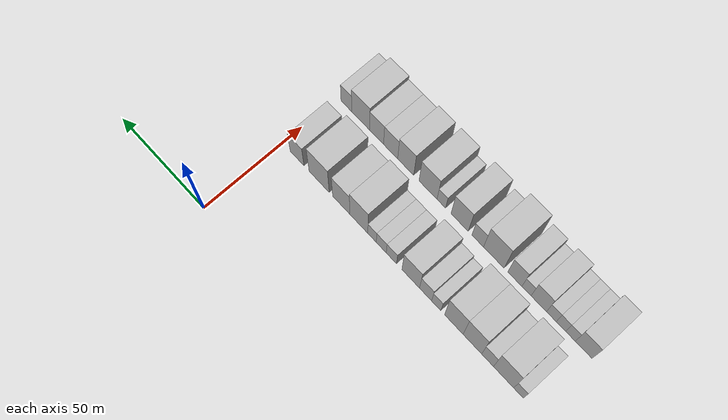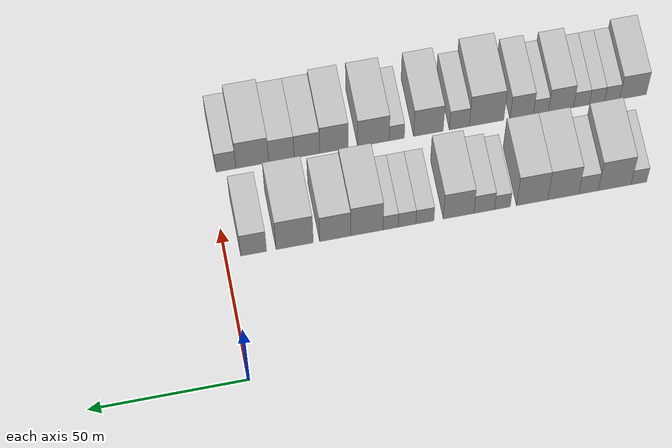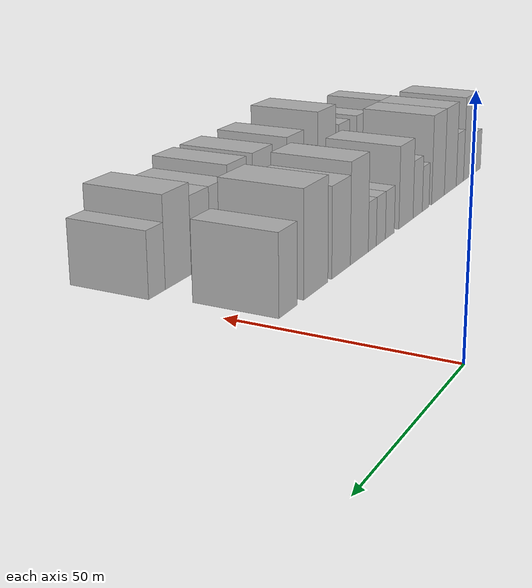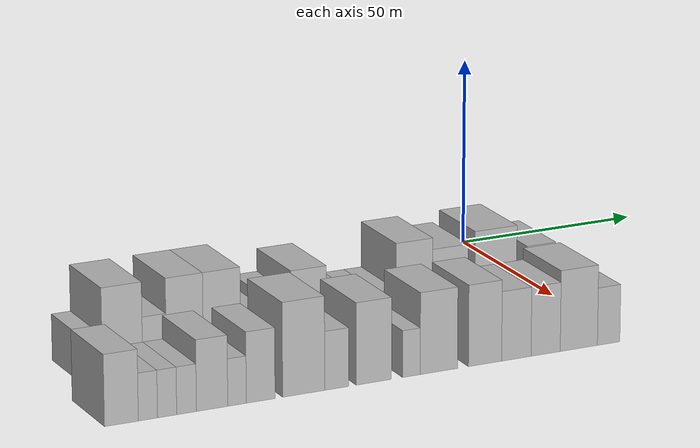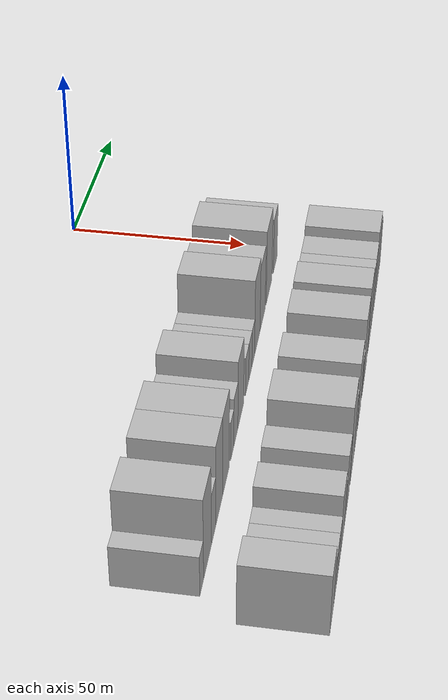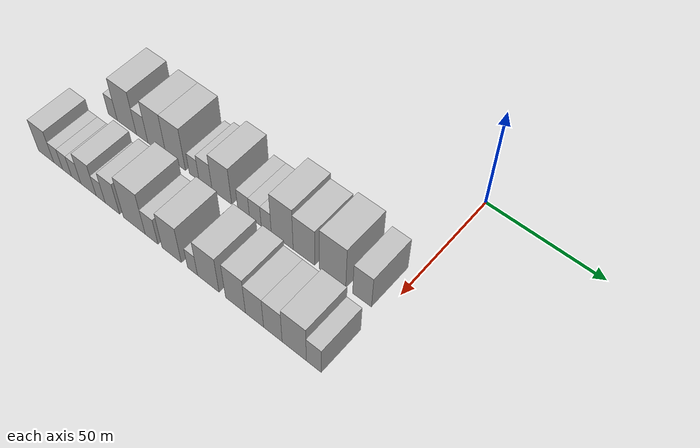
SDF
<sdf version="1.6">
 <world name="default">
  <model name="building_18">
   <static>1</static>
   <pose>50.0000 -131.5316 0 0.000000 0.000000 0.000000</pose>
   <link name="link">
    <pose>0 0 6.00 0 0 0</pose>
    <collision name="collision"><geometry><box><size>20.0000 5.0256 12.0000</size></box></geometry></collision>
    <visual name="visual">
     <cast_shadows>0</cast_shadows>
     <geometry><box><size>20.0000 5.0256 12.0000</size></box></geometry>
     <material>
      <script>
       <uri>model://HANNAS_wall/materials/scripts</uri>
       <uri>model://HANNAS_wall/materials/textures</uri>
       <name>vrc/HANNAS_wall</name>
      </script>
     </material>
    </visual>
   </link>
  </model>
  <model name="building_19">
   <static>1</static>
   <pose>50.0000 -123.7338 0 0.000000 0.000000 0.000000</pose>
   <link name="link">
    <pose>0 0 12.00 0 0 0</pose>
    <collision name="collision"><geometry><box><size>20.0000 10.5699 24.0000</size></box></geometry></collision>
    <visual name="visual">
     <cast_shadows>0</cast_shadows>
     <geometry><box><size>20.0000 10.5699 24.0000</size></box></geometry>
     <material>
      <script>
       <uri>model://HANNAS_wall/materials/scripts</uri>
       <uri>model://HANNAS_wall/materials/textures</uri>
       <name>vrc/HANNAS_wall</name>
      </script>
     </material>
    </visual>
   </link>
  </model>
  <model name="building_20">
   <static>1</static>
   <pose>50.0000 -115.3084 0 0.000000 0.000000 0.000000</pose>
   <link name="link">
    <pose>0 0 7.50 0 0 0</pose>
    <collision name="collision"><geometry><box><size>20.0000 6.2810 15.0000</size></box></geometry></collision>
    <visual name="visual">
     <cast_shadows>0</cast_shadows>
     <geometry><box><size>20.0000 6.2810 15.0000</size></box></geometry>
     <material>
      <script>
       <uri>model://HANNAS_wall/materials/scripts</uri>
       <uri>model://HANNAS_wall/materials/textures</uri>
       <name>vrc/HANNAS_wall</name>
      </script>
     </material>
    </visual>
   </link>
  </model>
  <model name="building_21">
   <static>1</static>
   <pose>50.0000 -107.2324 0 0.000000 0.000000 0.000000</pose>
   <link name="link">
    <pose>0 0 12.00 0 0 0</pose>
    <collision name="collision"><geometry><box><size>20.0000 9.8711 24.0000</size></box></geometry></collision>
    <visual name="visual">
     <cast_shadows>0</cast_shadows>
     <geometry><box><size>20.0000 9.8711 24.0000</size></box></geometry>
     <material>
      <script>
       <uri>model://HANNAS_wall/materials/scripts</uri>
       <uri>model://HANNAS_wall/materials/textures</uri>
       <name>vrc/HANNAS_wall</name>
      </script>
     </material>
    </visual>
   </link>
  </model>
  <model name="building_22">
   <static>1</static>
   <pose>50.0000 -97.2972 0 0.000000 0.000000 0.000000</pose>
   <link name="link">
    <pose>0 0 12.00 0 0 0</pose>
    <collision name="collision"><geometry><box><size>20.0000 9.9993 24.0000</size></box></geometry></collision>
    <visual name="visual">
     <cast_shadows>0</cast_shadows>
     <geometry><box><size>20.0000 9.9993 24.0000</size></box></geometry>
     <material>
      <script>
       <uri>model://HANNAS_wall/materials/scripts</uri>
       <uri>model://HANNAS_wall/materials/textures</uri>
       <name>vrc/HANNAS_wall</name>
      </script>
     </material>
    </visual>
   </link>
  </model>
  <model name="building_23">
   <static>1</static>
   <pose>50.0000 -87.7939 0 0.000000 0.000000 0.000000</pose>
   <link name="link">
    <pose>0 0 6.00 0 0 0</pose>
    <collision name="collision"><geometry><box><size>20.0000 5.0073 12.0000</size></box></geometry></collision>
    <visual name="visual">
     <cast_shadows>0</cast_shadows>
     <geometry><box><size>20.0000 5.0073 12.0000</size></box></geometry>
     <material>
      <script>
       <uri>model://HANNAS_wall/materials/scripts</uri>
       <uri>model://HANNAS_wall/materials/textures</uri>
       <name>vrc/HANNAS_wall</name>
      </script>
     </material>
    </visual>
   </link>
  </model>
  <model name="building_24">
   <static>1</static>
   <pose>50.0000 -81.9762 0 0.000000 0.000000 0.000000</pose>
   <link name="link">
    <pose>0 0 7.50 0 0 0</pose>
    <collision name="collision"><geometry><box><size>20.0000 6.6281 15.0000</size></box></geometry></collision>
    <visual name="visual">
     <cast_shadows>0</cast_shadows>
     <geometry><box><size>20.0000 6.6281 15.0000</size></box></geometry>
     <material>
      <script>
       <uri>model://HANNAS_wall/materials/scripts</uri>
       <uri>model://HANNAS_wall/materials/textures</uri>
       <name>vrc/HANNAS_wall</name>
      </script>
     </material>
    </visual>
   </link>
  </model>
  <model name="building_25">
   <static>1</static>
   <pose>50.0000 -73.7933 0 0.000000 0.000000 0.000000</pose>
   <link name="link">
    <pose>0 0 10.50 0 0 0</pose>
    <collision name="collision"><geometry><box><size>20.0000 9.7376 21.0000</size></box></geometry></collision>
    <visual name="visual">
     <cast_shadows>0</cast_shadows>
     <geometry><box><size>20.0000 9.7376 21.0000</size></box></geometry>
     <material>
      <script>
       <uri>model://HANNAS_wall/materials/scripts</uri>
       <uri>model://HANNAS_wall/materials/textures</uri>
       <name>vrc/HANNAS_wall</name>
      </script>
     </material>
    </visual>
   </link>
  </model>
  <model name="building_26">
   <static>1</static>
   <pose>50.0000 -63.0612 0 0.000000 0.000000 0.000000</pose>
   <link name="link">
    <pose>0 0 6.00 0 0 0</pose>
    <collision name="collision"><geometry><box><size>20.0000 5.7266 12.0000</size></box></geometry></collision>
    <visual name="visual">
     <cast_shadows>0</cast_shadows>
     <geometry><box><size>20.0000 5.7266 12.0000</size></box></geometry>
     <material>
      <script>
       <uri>model://HANNAS_wall/materials/scripts</uri>
       <uri>model://HANNAS_wall/materials/textures</uri>
       <name>vrc/HANNAS_wall</name>
      </script>
     </material>
    </visual>
   </link>
  </model>
  <model name="building_27">
   <static>1</static>
   <pose>50.0000 -57.3837 0 0.000000 0.000000 0.000000</pose>
   <link name="link">
    <pose>0 0 6.00 0 0 0</pose>
    <collision name="collision"><geometry><box><size>20.0000 5.6284 12.0000</size></box></geometry></collision>
    <visual name="visual">
     <cast_shadows>0</cast_shadows>
     <geometry><box><size>20.0000 5.6284 12.0000</size></box></geometry>
     <material>
      <script>
       <uri>model://HANNAS_wall/materials/scripts</uri>
       <uri>model://HANNAS_wall/materials/textures</uri>
       <name>vrc/HANNAS_wall</name>
      </script>
     </material>
    </visual>
   </link>
  </model>
  <model name="building_28">
   <static>1</static>
   <pose>50.0000 -52.1638 0 0.000000 0.000000 0.000000</pose>
   <link name="link">
    <pose>0 0 6.00 0 0 0</pose>
    <collision name="collision"><geometry><box><size>20.0000 4.8116 12.0000</size></box></geometry></collision>
    <visual name="visual">
     <cast_shadows>0</cast_shadows>
     <geometry><box><size>20.0000 4.8116 12.0000</size></box></geometry>
     <material>
      <script>
       <uri>model://HANNAS_wall/materials/scripts</uri>
       <uri>model://HANNAS_wall/materials/textures</uri>
       <name>vrc/HANNAS_wall</name>
      </script>
     </material>
    </visual>
   </link>
  </model>
  <model name="building_29">
   <static>1</static>
   <pose>50.0000 -44.6425 0 0.000000 0.000000 0.000000</pose>
   <link name="link">
    <pose>0 0 12.00 0 0 0</pose>
    <collision name="collision"><geometry><box><size>20.0000 10.2310 24.0000</size></box></geometry></collision>
    <visual name="visual">
     <cast_shadows>0</cast_shadows>
     <geometry><box><size>20.0000 10.2310 24.0000</size></box></geometry>
     <material>
      <script>
       <uri>model://HANNAS_wall/materials/scripts</uri>
       <uri>model://HANNAS_wall/materials/textures</uri>
       <name>vrc/HANNAS_wall</name>
      </script>
     </material>
    </visual>
   </link>
  </model>
  <model name="building_30">
   <static>1</static>
   <pose>50.0000 -34.5678 0 0.000000 0.000000 0.000000</pose>
   <link name="link">
    <pose>0 0 10.50 0 0 0</pose>
    <collision name="collision"><geometry><box><size>20.0000 9.9183 21.0000</size></box></geometry></collision>
    <visual name="visual">
     <cast_shadows>0</cast_shadows>
     <geometry><box><size>20.0000 9.9183 21.0000</size></box></geometry>
     <material>
      <script>
       <uri>model://HANNAS_wall/materials/scripts</uri>
       <uri>model://HANNAS_wall/materials/textures</uri>
       <name>vrc/HANNAS_wall</name>
      </script>
     </material>
    </visual>
   </link>
  </model>
  <model name="building_31">
   <static>1</static>
   <pose>50.0000 -21.7144 0 0.000000 0.000000 0.000000</pose>
   <link name="link">
    <pose>0 0 12.00 0 0 0</pose>
    <collision name="collision"><geometry><box><size>20.0000 11.7885 24.0000</size></box></geometry></collision>
    <visual name="visual">
     <cast_shadows>0</cast_shadows>
     <geometry><box><size>20.0000 11.7885 24.0000</size></box></geometry>
     <material>
      <script>
       <uri>model://HANNAS_wall/materials/scripts</uri>
       <uri>model://HANNAS_wall/materials/textures</uri>
       <name>vrc/HANNAS_wall</name>
      </script>
     </material>
    </visual>
   </link>
  </model>
  <model name="building_32">
   <static>1</static>
   <pose>50.0000 -8.7360 0 0.000000 0.000000 0.000000</pose>
   <link name="link">
    <pose>0 0 9.00 0 0 0</pose>
    <collision name="collision"><geometry><box><size>20.0000 8.1682 18.0000</size></box></geometry></collision>
    <visual name="visual">
     <cast_shadows>0</cast_shadows>
     <geometry><box><size>20.0000 8.1682 18.0000</size></box></geometry>
     <material>
      <script>
       <uri>model://HANNAS_wall/materials/scripts</uri>
       <uri>model://HANNAS_wall/materials/textures</uri>
       <name>vrc/HANNAS_wall</name>
      </script>
     </material>
    </visual>
   </link>
  </model>
  <model name="building_79">
   <static>1</static>
   <pose>79.0000 -136.3057 0 0.000000 0.000000 0.000000</pose>
   <link name="link">
    <pose>0 0 9.00 0 0 0</pose>
    <collision name="collision"><geometry><box><size>20.0000 8.6578 18.0000</size></box></geometry></collision>
    <visual name="visual">
     <cast_shadows>0</cast_shadows>
     <geometry><box><size>20.0000 8.6578 18.0000</size></box></geometry>
     <material>
      <script>
       <uri>model://HANNAS_wall/materials/scripts</uri>
       <uri>model://HANNAS_wall/materials/textures</uri>
       <name>vrc/HANNAS_wall</name>
      </script>
     </material>
    </visual>
   </link>
  </model>
  <model name="building_80">
   <static>1</static>
   <pose>79.0000 -129.5192 0 0.000000 0.000000 0.000000</pose>
   <link name="link">
    <pose>0 0 6.00 0 0 0</pose>
    <collision name="collision"><geometry><box><size>20.0000 4.9153 12.0000</size></box></geometry></collision>
    <visual name="visual">
     <cast_shadows>0</cast_shadows>
     <geometry><box><size>20.0000 4.9153 12.0000</size></box></geometry>
     <material>
      <script>
       <uri>model://HANNAS_wall/materials/scripts</uri>
       <uri>model://HANNAS_wall/materials/textures</uri>
       <name>vrc/HANNAS_wall</name>
      </script>
     </material>
    </visual>
   </link>
  </model>
  <model name="building_81">
   <static>1</static>
   <pose>79.0000 -124.5815 0 0.000000 0.000000 0.000000</pose>
   <link name="link">
    <pose>0 0 6.00 0 0 0</pose>
    <collision name="collision"><geometry><box><size>20.0000 4.9602 12.0000</size></box></geometry></collision>
    <visual name="visual">
     <cast_shadows>0</cast_shadows>
     <geometry><box><size>20.0000 4.9602 12.0000</size></box></geometry>
     <material>
      <script>
       <uri>model://HANNAS_wall/materials/scripts</uri>
       <uri>model://HANNAS_wall/materials/textures</uri>
       <name>vrc/HANNAS_wall</name>
      </script>
     </material>
    </visual>
   </link>
  </model>
  <model name="building_82">
   <static>1</static>
   <pose>79.0000 -119.5411 0 0.000000 0.000000 0.000000</pose>
   <link name="link">
    <pose>0 0 6.00 0 0 0</pose>
    <collision name="collision"><geometry><box><size>20.0000 5.1207 12.0000</size></box></geometry></collision>
    <visual name="visual">
     <cast_shadows>0</cast_shadows>
     <geometry><box><size>20.0000 5.1207 12.0000</size></box></geometry>
     <material>
      <script>
       <uri>model://HANNAS_wall/materials/scripts</uri>
       <uri>model://HANNAS_wall/materials/textures</uri>
       <name>vrc/HANNAS_wall</name>
      </script>
     </material>
    </visual>
   </link>
  </model>
  <model name="building_83">
   <static>1</static>
   <pose>79.0000 -112.9087 0 0.000000 0.000000 0.000000</pose>
   <link name="link">
    <pose>0 0 9.00 0 0 0</pose>
    <collision name="collision"><geometry><box><size>20.0000 8.1441 18.0000</size></box></geometry></collision>
    <visual name="visual">
     <cast_shadows>0</cast_shadows>
     <geometry><box><size>20.0000 8.1441 18.0000</size></box></geometry>
     <material>
      <script>
       <uri>model://HANNAS_wall/materials/scripts</uri>
       <uri>model://HANNAS_wall/materials/textures</uri>
       <name>vrc/HANNAS_wall</name>
      </script>
     </material>
    </visual>
   </link>
  </model>
  <model name="building_84">
   <static>1</static>
   <pose>79.0000 -106.4033 0 0.000000 0.000000 0.000000</pose>
   <link name="link">
    <pose>0 0 6.00 0 0 0</pose>
    <collision name="collision"><geometry><box><size>20.0000 4.8666 12.0000</size></box></geometry></collision>
    <visual name="visual">
     <cast_shadows>0</cast_shadows>
     <geometry><box><size>20.0000 4.8666 12.0000</size></box></geometry>
     <material>
      <script>
       <uri>model://HANNAS_wall/materials/scripts</uri>
       <uri>model://HANNAS_wall/materials/textures</uri>
       <name>vrc/HANNAS_wall</name>
      </script>
     </material>
    </visual>
   </link>
  </model>
  <model name="building_85">
   <static>1</static>
   <pose>79.0000 -100.1828 0 0.000000 0.000000 0.000000</pose>
   <link name="link">
    <pose>0 0 9.00 0 0 0</pose>
    <collision name="collision"><geometry><box><size>20.0000 7.5745 18.0000</size></box></geometry></collision>
    <visual name="visual">
     <cast_shadows>0</cast_shadows>
     <geometry><box><size>20.0000 7.5745 18.0000</size></box></geometry>
     <material>
      <script>
       <uri>model://HANNAS_wall/materials/scripts</uri>
       <uri>model://HANNAS_wall/materials/textures</uri>
       <name>vrc/HANNAS_wall</name>
      </script>
     </material>
    </visual>
   </link>
  </model>
  <model name="building_86">
   <static>1</static>
   <pose>79.0000 -88.8193 0 0.000000 0.000000 0.000000</pose>
   <link name="link">
    <pose>0 0 12.00 0 0 0</pose>
    <collision name="collision"><geometry><box><size>20.0000 11.1524 24.0000</size></box></geometry></collision>
    <visual name="visual">
     <cast_shadows>0</cast_shadows>
     <geometry><box><size>20.0000 11.1524 24.0000</size></box></geometry>
     <material>
      <script>
       <uri>model://HANNAS_wall/materials/scripts</uri>
       <uri>model://HANNAS_wall/materials/textures</uri>
       <name>vrc/HANNAS_wall</name>
      </script>
     </material>
    </visual>
   </link>
  </model>
  <model name="building_87">
   <static>1</static>
   <pose>79.0000 -80.0393 0 0.000000 0.000000 0.000000</pose>
   <link name="link">
    <pose>0 0 7.50 0 0 0</pose>
    <collision name="collision"><geometry><box><size>20.0000 6.4076 15.0000</size></box></geometry></collision>
    <visual name="visual">
     <cast_shadows>0</cast_shadows>
     <geometry><box><size>20.0000 6.4076 15.0000</size></box></geometry>
     <material>
      <script>
       <uri>model://HANNAS_wall/materials/scripts</uri>
       <uri>model://HANNAS_wall/materials/textures</uri>
       <name>vrc/HANNAS_wall</name>
      </script>
     </material>
    </visual>
   </link>
  </model>
  <model name="building_88">
   <static>1</static>
   <pose>79.0000 -70.0729 0 0.000000 0.000000 0.000000</pose>
   <link name="link">
    <pose>0 0 10.50 0 0 0</pose>
    <collision name="collision"><geometry><box><size>20.0000 9.5252 21.0000</size></box></geometry></collision>
    <visual name="visual">
     <cast_shadows>0</cast_shadows>
     <geometry><box><size>20.0000 9.5252 21.0000</size></box></geometry>
     <material>
      <script>
       <uri>model://HANNAS_wall/materials/scripts</uri>
       <uri>model://HANNAS_wall/materials/textures</uri>
       <name>vrc/HANNAS_wall</name>
      </script>
     </material>
    </visual>
   </link>
  </model>
  <model name="building_89">
   <static>1</static>
   <pose>79.0000 -59.9031 0 0.000000 0.000000 0.000000</pose>
   <link name="link">
    <pose>0 0 6.00 0 0 0</pose>
    <collision name="collision"><geometry><box><size>20.0000 4.8146 12.0000</size></box></geometry></collision>
    <visual name="visual">
     <cast_shadows>0</cast_shadows>
     <geometry><box><size>20.0000 4.8146 12.0000</size></box></geometry>
     <material>
      <script>
       <uri>model://HANNAS_wall/materials/scripts</uri>
       <uri>model://HANNAS_wall/materials/textures</uri>
       <name>vrc/HANNAS_wall</name>
      </script>
     </material>
    </visual>
   </link>
  </model>
  <model name="building_90">
   <static>1</static>
   <pose>79.0000 -52.4016 0 0.000000 0.000000 0.000000</pose>
   <link name="link">
    <pose>0 0 10.50 0 0 0</pose>
    <collision name="collision"><geometry><box><size>20.0000 10.1884 21.0000</size></box></geometry></collision>
    <visual name="visual">
     <cast_shadows>0</cast_shadows>
     <geometry><box><size>20.0000 10.1884 21.0000</size></box></geometry>
     <material>
      <script>
       <uri>model://HANNAS_wall/materials/scripts</uri>
       <uri>model://HANNAS_wall/materials/textures</uri>
       <name>vrc/HANNAS_wall</name>
      </script>
     </material>
    </visual>
   </link>
  </model>
  <model name="building_91">
   <static>1</static>
   <pose>79.0000 -39.7304 0 0.000000 0.000000 0.000000</pose>
   <link name="link">
    <pose>0 0 10.50 0 0 0</pose>
    <collision name="collision"><geometry><box><size>20.0000 9.1539 21.0000</size></box></geometry></collision>
    <visual name="visual">
     <cast_shadows>0</cast_shadows>
     <geometry><box><size>20.0000 9.1539 21.0000</size></box></geometry>
     <material>
      <script>
       <uri>model://HANNAS_wall/materials/scripts</uri>
       <uri>model://HANNAS_wall/materials/textures</uri>
       <name>vrc/HANNAS_wall</name>
      </script>
     </material>
    </visual>
   </link>
  </model>
  <model name="building_92">
   <static>1</static>
   <pose>79.0000 -31.0681 0 0.000000 0.000000 0.000000</pose>
   <link name="link">
    <pose>0 0 9.00 0 0 0</pose>
    <collision name="collision"><geometry><box><size>20.0000 8.1707 18.0000</size></box></geometry></collision>
    <visual name="visual">
     <cast_shadows>0</cast_shadows>
     <geometry><box><size>20.0000 8.1707 18.0000</size></box></geometry>
     <material>
      <script>
       <uri>model://HANNAS_wall/materials/scripts</uri>
       <uri>model://HANNAS_wall/materials/textures</uri>
       <name>vrc/HANNAS_wall</name>
      </script>
     </material>
    </visual>
   </link>
  </model>
  <model name="building_93">
   <static>1</static>
   <pose>79.0000 -22.8939 0 0.000000 0.000000 0.000000</pose>
   <link name="link">
    <pose>0 0 9.00 0 0 0</pose>
    <collision name="collision"><geometry><box><size>20.0000 8.1778 18.0000</size></box></geometry></collision>
    <visual name="visual">
     <cast_shadows>0</cast_shadows>
     <geometry><box><size>20.0000 8.1778 18.0000</size></box></geometry>
     <material>
      <script>
       <uri>model://HANNAS_wall/materials/scripts</uri>
       <uri>model://HANNAS_wall/materials/textures</uri>
       <name>vrc/HANNAS_wall</name>
      </script>
     </material>
    </visual>
   </link>
  </model>
  <model name="building_94">
   <static>1</static>
   <pose>79.0000 -13.5717 0 0.000000 0.000000 0.000000</pose>
   <link name="link">
    <pose>0 0 10.50 0 0 0</pose>
    <collision name="collision"><geometry><box><size>20.0000 10.4665 21.0000</size></box></geometry></collision>
    <visual name="visual">
     <cast_shadows>0</cast_shadows>
     <geometry><box><size>20.0000 10.4665 21.0000</size></box></geometry>
     <material>
      <script>
       <uri>model://HANNAS_wall/materials/scripts</uri>
       <uri>model://HANNAS_wall/materials/textures</uri>
       <name>vrc/HANNAS_wall</name>
      </script>
     </material>
    </visual>
   </link>
  </model>
  <model name="building_95">
   <static>1</static>
   <pose>79.0000 -5.1570 0 0.000000 0.000000 0.000000</pose>
   <link name="link">
    <pose>0 0 7.50 0 0 0</pose>
    <collision name="collision"><geometry><box><size>20.0000 6.3628 15.0000</size></box></geometry></collision>
    <visual name="visual">
     <cast_shadows>0</cast_shadows>
     <geometry><box><size>20.0000 6.3628 15.0000</size></box></geometry>
     <material>
      <script>
       <uri>model://HANNAS_wall/materials/scripts</uri>
       <uri>model://HANNAS_wall/materials/textures</uri>
       <name>vrc/HANNAS_wall</name>
      </script>
     </material>
    </visual>
   </link>
  </model>
 </world>
</sdf>
